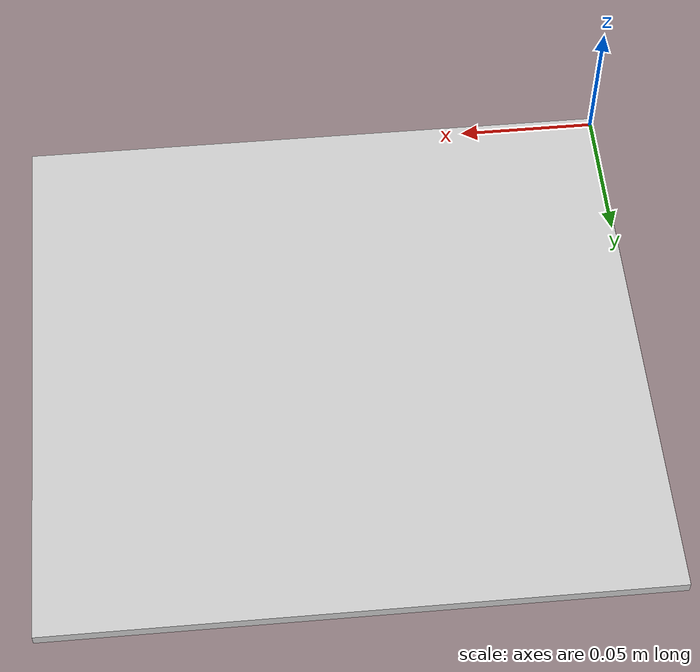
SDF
<?xml version="1.0"?>
<sdf version="1.4">
  <model name="chessboard_200x214_5x4_25">
    <static>1</static>
    <link name="chessboard">
      <pose>0 0 0 0 0 0</pose>
      <visual name="chessboard_200x214_5x4_25">
        <geometry>
          <mesh>
            <uri>model://chessboard_200x214_5x4_25/chessboard_200x214_5x4_25.dae</uri>
          </mesh>
        </geometry>
      </visual>
      <collision name="charuco_800x600_5x5_100">
        <geometry>
          <mesh>
            <uri>model://chessboard_200x214_5x4_25/chessboard_200x214_5x4_25.dae</uri>
          </mesh>
        </geometry>
      </collision>
    </link>
  </model>
</sdf>
